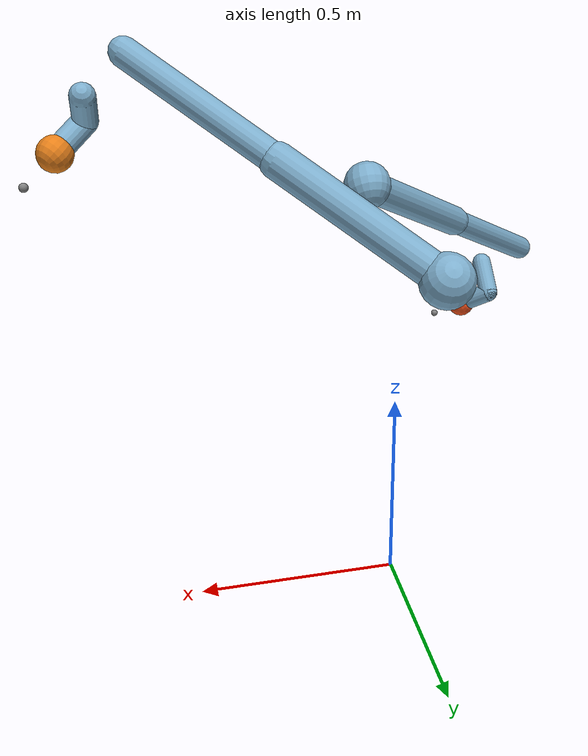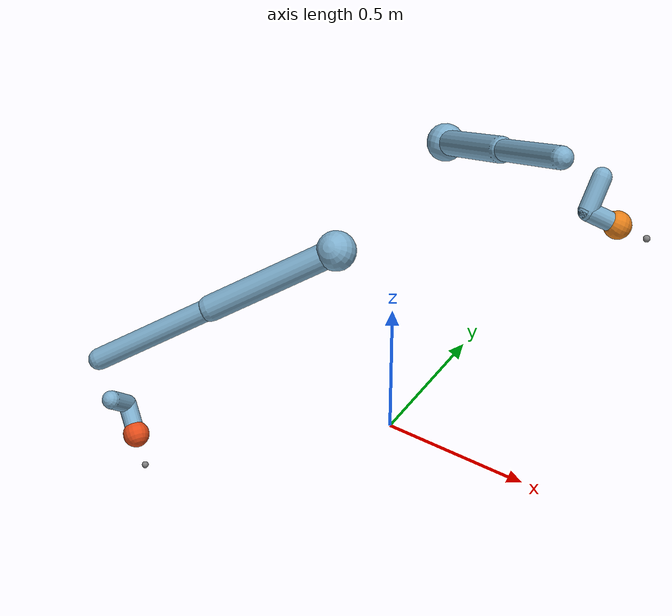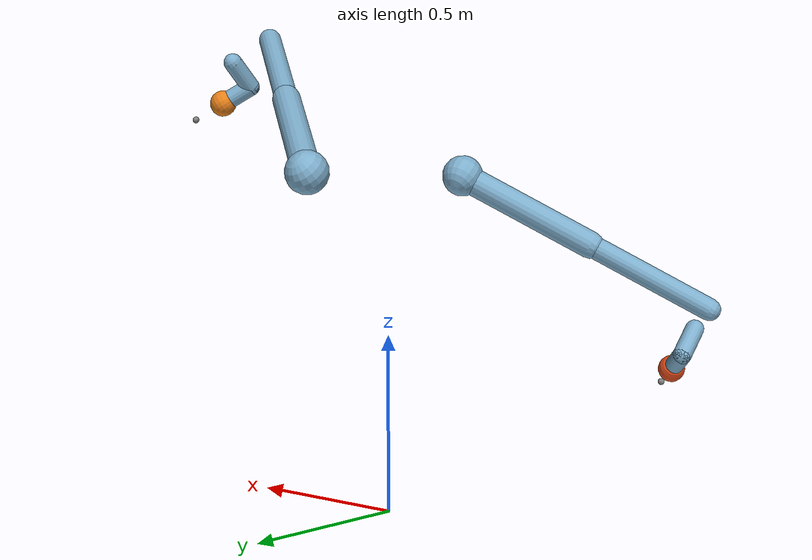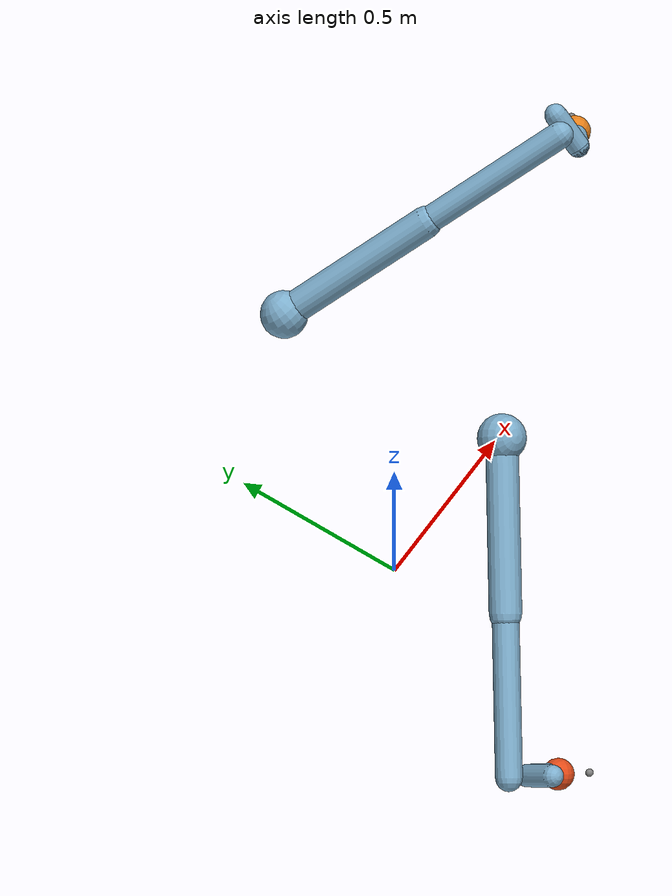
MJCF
<?xml version="1.0"?>
<mujoco model="phoebe_dual_arms">
  <compiler angle="radian" fusestatic="false"/>

  <option gravity="0 0 -9.81" timestep="0.001"/>

  <default>
    <geom rgba="0.49 0.68 0.80 1" type="capsule"/>
  </default>

  <worldbody>
    <!-- ─── LEFT ARM MOUNT (lift column fixed at h=0.24 m) ─── -->
    <body name="left_arm_mount" pos="-0.02038 0.196721 0.497936">

      <body name="left_ur_arm_shoulder_link"
            pos="0.0126802 0.124615 0.463459"
            quat="0.353086 -0.134633 0.350748 0.856843">
        <inertial pos="0 -0.00193 -0.02561"
                  quat="0.560239 0.250606 -0.316559 0.72327"
                  mass="3.761"
                  diaginertia="0.00703079 0.0070003 0.00602478"/>
        <joint name="left_ur_arm_shoulder_pan_joint"
               type="hinge" axis="0 0 1"
               range="-6.28319 6.28319"
               actuatorfrcrange="-150 150"/>
        <geom type="sphere" size="0.06" rgba="0.49 0.68 0.80 1"/>

        <body name="left_ur_arm_upper_arm_link"
              pos="0.000226782 0 0"
              quat="0.707115 0.707098 -9.55133e-07 -9.55157e-07">
          <inertial pos="-0.2125 0 0.11336"
                    quat="0.500275 0.499641 0.500368 0.499716"
                    mass="8.058"
                    diaginertia="0.333881 0.332472 0.0150588"/>
          <joint name="left_ur_arm_shoulder_lift_joint"
                 type="hinge" axis="0 0 1"
                 range="-6.28319 6.28319"
                 actuatorfrcrange="-150 150"/>
          <geom fromto="0 0 0 -0.4255 0 0" size="0.04"/>

          <body name="left_ur_arm_forearm_link"
                pos="-0.425505 0 0"
                quat="1 2.07226e-05 -0.000262987 -7.61405e-08">
            <inertial pos="-0.2422 0 0.0265"
                      quat="0.501301 0.498381 0.510711 0.489375"
                      mass="2.846"
                      diaginertia="0.0787927 0.0785102 0.00397103"/>
            <joint name="left_ur_arm_elbow_joint"
                   type="hinge" axis="0 0 1"
                   range="-3.14159 3.14159"
                   actuatorfrcrange="-150 150"/>
            <geom fromto="0 0 0 -0.3926 0 0" size="0.033"/>

            <body name="left_ur_arm_wrist_1_link"
                  pos="-0.392582 -4.63122e-05 0.133721"
                  quat="1 0.000173166 0.000544517 1.77883e-06">
              <inertial pos="0 -0.01634 -0.0018"
                        quat="0.960609 0.277707 0.00515042 -0.00913626"
                        mass="1.37"
                        diaginertia="0.00165502 0.00142363 0.00119868"/>
              <joint name="left_ur_arm_wrist_1_joint"
                     type="hinge" axis="0 0 1"
                     range="-6.28319 6.28319"
                     actuatorfrcrange="-28 28"/>
              <geom fromto="0 0 0 0 -0.1 0" size="0.028"/>

              <body name="left_ur_arm_wrist_2_link"
                    pos="1.36989e-05 -0.0999777 8.48591e-05"
                    quat="0.707407 0.706807 -4.64337e-08 -4.64731e-08">
                <inertial pos="0 0.01634 -0.0018"
                          quat="0.996652 -0.0779336 -0.00684629 -0.0237381"
                          mass="1.3"
                          diaginertia="0.00135637 0.00128607 0.00095814"/>
                <joint name="left_ur_arm_wrist_2_joint"
                       type="hinge" axis="0 0 1"
                       range="-6.28319 6.28319"
                       actuatorfrcrange="-28 28"/>
                <geom fromto="0 0 0 0 0.1 0" size="0.028"/>

                <body name="left_ur_arm_wrist_3_link"
                      pos="0.000106733 0.0996158 1.94962e-05"
                      quat="-0.707176 0.707038 1.93623e-08 -1.93661e-08">
                  <inertial pos="0.000839754 -0.00316796 0.065463"
                            quat="0.724907 0.688778 0.0074684 0.00631936"
                            mass="1.31087"
                            diaginertia="0.00765268 0.0049038 0.00405629"/>
                  <joint name="left_ur_arm_wrist_3_joint"
                         type="hinge" axis="0 0 1"
                         range="-6.28319 6.28319"
                         actuatorfrcrange="-28 28"/>
                  <geom type="sphere" size="0.04" rgba="0.9 0.5 0.1 1"/>
                  <!-- tool0 site for FK queries -->
                  <site name="left_ur_arm_tool0" pos="0 0 0.1" size="0.01"/>
                </body>

              </body>
            </body>
          </body>
        </body>
      </body>
    </body>

    <!-- ─── RIGHT ARM MOUNT (lift column fixed at h=0.24 m) ─── -->
    <body name="right_arm_mount" pos="-0.019145 -0.188738 0.482561">

      <body name="right_ur_arm_shoulder_link"
            pos="0.0147855 -0.128643 0.461404"
            quat="0.857772 0.353915 -0.131976 0.348645">
        <inertial pos="0 -0.00193 -0.02561"
                  quat="0.560239 0.250606 -0.316559 0.72327"
                  mass="3.761"
                  diaginertia="0.00703079 0.0070003 0.00602478"/>
        <joint name="right_ur_arm_shoulder_pan_joint"
               type="hinge" axis="0 0 1"
               range="-6.28319 6.28319"
               actuatorfrcrange="-150 150"/>
        <geom type="sphere" size="0.06" rgba="0.49 0.68 0.80 1"/>

        <body name="right_ur_arm_upper_arm_link"
              pos="7.08681e-05 0 0"
              quat="0.707305 0.706908 1.4235e-06 1.4243e-06">
          <inertial pos="-0.2125 0 0.11336"
                    quat="0.500275 0.499641 0.500368 0.499716"
                    mass="8.058"
                    diaginertia="0.333881 0.332472 0.0150588"/>
          <joint name="right_ur_arm_shoulder_lift_joint"
                 type="hinge" axis="0 0 1"
                 range="-6.28319 6.28319"
                 actuatorfrcrange="-150 150"/>
          <geom fromto="0 0 0 -0.4253 0 0" size="0.04"/>

          <body name="right_ur_arm_forearm_link"
                pos="-0.425304 0 0"
                quat="1 9.70614e-05 0.000269354 4.69205e-07">
            <inertial pos="-0.2422 0 0.0265"
                      quat="0.501301 0.498381 0.510711 0.489375"
                      mass="2.846"
                      diaginertia="0.0787927 0.0785102 0.00397103"/>
            <joint name="right_ur_arm_elbow_joint"
                   type="hinge" axis="0 0 1"
                   range="-3.14159 3.14159"
                   actuatorfrcrange="-150 150"/>
            <geom fromto="0 0 0 -0.3922 0 0" size="0.033"/>

            <body name="right_ur_arm_wrist_1_link"
                  pos="-0.392184 8.85386e-05 0.134008"
                  quat="1 -0.000330347 0.000508859 -1.44648e-06">
              <inertial pos="0 -0.01634 -0.0018"
                        quat="0.960609 0.277707 0.00515042 -0.00913626"
                        mass="1.37"
                        diaginertia="0.00165502 0.00142363 0.00119868"/>
              <joint name="right_ur_arm_wrist_1_joint"
                     type="hinge" axis="0 0 1"
                     range="-6.28319 6.28319"
                     actuatorfrcrange="-28 28"/>
              <geom fromto="0 0 0 0 -0.1 0" size="0.028"/>

              <body name="right_ur_arm_wrist_2_link"
                    pos="3.88504e-05 -0.0998073 8.22332e-05"
                    quat="0.707398 0.706815 2.04332e-07 2.045e-07">
                <inertial pos="0 0.01634 -0.0018"
                          quat="0.996652 -0.0779336 -0.00684629 -0.0237381"
                          mass="1.3"
                          diaginertia="0.00135637 0.00128607 0.00095814"/>
                <joint name="right_ur_arm_wrist_2_joint"
                       type="hinge" axis="0 0 1"
                       range="-6.28319 6.28319"
                       actuatorfrcrange="-28 28"/>
                <geom fromto="0 0 0 0 0.1 0" size="0.028"/>

                <body name="right_ur_arm_wrist_3_link"
                      pos="7.98405e-05 0.0996341 1.16486e-05"
                      quat="-0.707148 0.707065 4.07248e-09 -4.07295e-09">
                  <inertial pos="0.000681263 -0.00313372 0.0653098"
                            quat="0.720299 0.693617 0.00574545 0.00567072"
                            mass="1.31087"
                            diaginertia="0.00764365 0.00489151 0.00404757"/>
                  <joint name="right_ur_arm_wrist_3_joint"
                         type="hinge" axis="0 0 1"
                         range="-6.28319 6.28319"
                         actuatorfrcrange="-28 28"/>
                  <geom type="sphere" size="0.04" rgba="0.9 0.3 0.1 1"/>
                  <!-- tool0 site for FK queries -->
                  <site name="right_ur_arm_tool0" pos="0 0 0.1" size="0.01"/>
                </body>

              </body>
            </body>
          </body>
        </body>
      </body>
    </body>

  </worldbody>
</mujoco>
